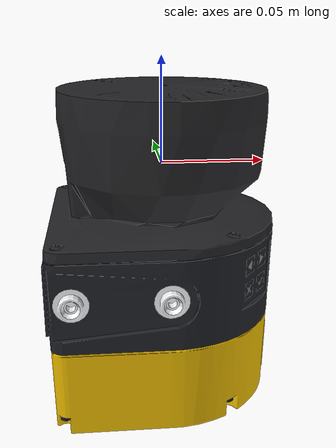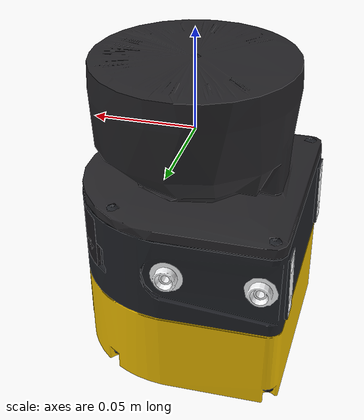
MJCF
<mujoco model="sick_microscan3">
  <compiler angle="radian" meshdir="meshes" autolimits="true"/>

  <asset>
    <material name="SICK-MICROSCAN3__m0_mat" rgba="1 0.6314 0.6 1"/>
    <material name="SICK-MICROSCAN3__m1_mat" rgba="0 0 0 1"/>
    <material name="SICK-MICROSCAN3__m2_mat" rgba="0.1216 0.1294 0.149 1"/>
    <material name="SICK-MICROSCAN3__m3_mat" rgba="0.1451 0.1412 0.1529 1"/>
    <material name="SICK-MICROSCAN3__m4_mat" rgba="0.1059 0.098 0.1137 1"/>
    <material name="SICK-MICROSCAN3__m5_mat" rgba="0.302 0.3176 0.3686 1"/>
    <material name="SICK-MICROSCAN3__m6_mat" rgba="0.0824 0.0863 0.098 1"/>
    <material name="SICK-MICROSCAN3__m7_mat" rgba="0.9725 0.9765 0.9843 1"/>
    <material name="SICK-MICROSCAN3__m8_mat" rgba="0.5686 0.5647 0.5373 1"/>
    <material name="SICK-MICROSCAN3__m9_mat" rgba="0.949 0.7529 0 1"/>
    <mesh name="SICK-MICROSCAN3__m0" file="SICK-MICROSCAN3__m0.obj"/>
    <mesh name="SICK-MICROSCAN3__m1" file="SICK-MICROSCAN3__m1.obj"/>
    <mesh name="SICK-MICROSCAN3__m2" file="SICK-MICROSCAN3__m2.obj"/>
    <mesh name="SICK-MICROSCAN3__m3" file="SICK-MICROSCAN3__m3.obj"/>
    <mesh name="SICK-MICROSCAN3__m4" file="SICK-MICROSCAN3__m4.obj"/>
    <mesh name="SICK-MICROSCAN3__m5" file="SICK-MICROSCAN3__m5.obj"/>
    <mesh name="SICK-MICROSCAN3__m6" file="SICK-MICROSCAN3__m6.obj"/>
    <mesh name="SICK-MICROSCAN3__m7" file="SICK-MICROSCAN3__m7.obj"/>
    <mesh name="SICK-MICROSCAN3__m8" file="SICK-MICROSCAN3__m8.obj"/>
    <mesh name="SICK-MICROSCAN3__m9" file="SICK-MICROSCAN3__m9.obj"/>
  </asset>

  <worldbody>
    <body name="mount">
      <inertial pos="0 0 0" mass="0.0001" diaginertia="0.0001 0.000001 0.0001"/>
      <geom name="sick_microscan3_visual_0" type="mesh" mesh="SICK-MICROSCAN3__m0" material="SICK-MICROSCAN3__m0_mat" pos="0 0 -0.06" quat="0.707388269 0.706825181 0 0"
            contype="0" conaffinity="0"/>
      <geom name="sick_microscan3_visual_1" type="mesh" mesh="SICK-MICROSCAN3__m1" material="SICK-MICROSCAN3__m1_mat" pos="0 0 -0.06" quat="0.707388269 0.706825181 0 0"
            contype="0" conaffinity="0"/>
      <geom name="sick_microscan3_visual_2" type="mesh" mesh="SICK-MICROSCAN3__m2" material="SICK-MICROSCAN3__m2_mat" pos="0 0 -0.06" quat="0.707388269 0.706825181 0 0"
            contype="0" conaffinity="0"/>
      <geom name="sick_microscan3_visual_3" type="mesh" mesh="SICK-MICROSCAN3__m3" material="SICK-MICROSCAN3__m3_mat" pos="0 0 -0.06" quat="0.707388269 0.706825181 0 0"
            contype="0" conaffinity="0"/>
      <geom name="sick_microscan3_visual_4" type="mesh" mesh="SICK-MICROSCAN3__m4" material="SICK-MICROSCAN3__m4_mat" pos="0 0 -0.06" quat="0.707388269 0.706825181 0 0"
            contype="0" conaffinity="0"/>
      <geom name="sick_microscan3_visual_5" type="mesh" mesh="SICK-MICROSCAN3__m5" material="SICK-MICROSCAN3__m5_mat" pos="0 0 -0.06" quat="0.707388269 0.706825181 0 0"
            contype="0" conaffinity="0"/>
      <geom name="sick_microscan3_visual_6" type="mesh" mesh="SICK-MICROSCAN3__m6" material="SICK-MICROSCAN3__m6_mat" pos="0 0 -0.06" quat="0.707388269 0.706825181 0 0"
            contype="0" conaffinity="0"/>
      <geom name="sick_microscan3_visual_7" type="mesh" mesh="SICK-MICROSCAN3__m7" material="SICK-MICROSCAN3__m7_mat" pos="0 0 -0.06" quat="0.707388269 0.706825181 0 0"
            contype="0" conaffinity="0"/>
      <geom name="sick_microscan3_visual_8" type="mesh" mesh="SICK-MICROSCAN3__m8" material="SICK-MICROSCAN3__m8_mat" pos="0 0 -0.06" quat="0.707388269 0.706825181 0 0"
            contype="0" conaffinity="0"/>
      <geom name="sick_microscan3_visual_9" type="mesh" mesh="SICK-MICROSCAN3__m9" material="SICK-MICROSCAN3__m9_mat" pos="0 0 -0.06" quat="0.707388269 0.706825181 0 0"
            contype="0" conaffinity="0"/>
      <!-- The vendor collides with the full mesh; this box bounds the converted housing instead. -->
      <geom name="sick_microscan3_collision" type="box" pos="-0.00045 5e-05 -0.03945" size="0.05555 0.05605 0.07595" group="3"/>
      <!-- The vendor scan frame (lidar_1_link) is the mount itself.
           Keep in step with the manifest's `frames:` entry. -->
      <site name="scan" pos="0 0 0" size="0.005"/>
    </body>
  </worldbody>
</mujoco>
